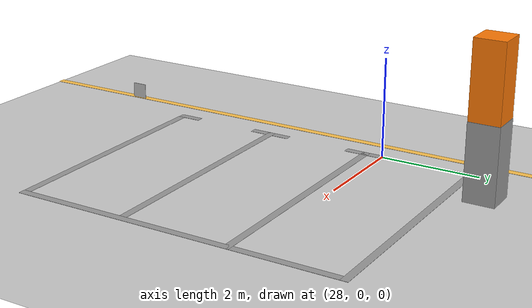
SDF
<sdf version="1.7">
 <world name="default">
  <model name="ground_plane">
   <static>1</static>
   <link name="link">
    <collision name="collision">
     <geometry><plane><normal>0 0 1</normal><size>100 100</size></plane></geometry>
     <surface><friction><ode><mu>100</mu><mu2>50</mu2></ode></friction></surface>
    </collision>
    <visual name="visual">
     <cast_shadows>0</cast_shadows>
     <geometry><plane><normal>0 0 1</normal><size>100 100</size></plane></geometry>
     <material>
      <script><uri>file://media/materials/scripts/gazebo.material</uri><name>Gazebo/Grey</name></script>
     </material>
    </visual>
   </link>
  </model>
  <model name="carport1_2_clone_1_clone_clone_clone">
   <pose>32.2274 -1.01442 0 0 0 -1.57043</pose>
   <link name="Wall_105">
    <collision name="Wall_105_Collision">
     <geometry><box><size>0.61 0.6 1.5</size></box></geometry>
     <pose>0 0 0.75 0 -0 0</pose>
    </collision>
    <visual name="Wall_105_Visual">
     <pose>0 0 0.75 0 -0 0</pose>
     <geometry><box><size>0.61 0.6 1.5</size></box></geometry>
     <material>
      <script><uri>file://media/materials/scripts/gazebo.material</uri><name>Gazebo/Grey</name></script>
      <ambient>1 1 1 1</ambient>
     </material>
     <meta><layer>0</layer></meta>
    </visual>
    <pose>-3.47407 -3.2865 0 0 -0 0</pose>
   </link>
   <link name="Wall_116">
    <collision name="Wall_116_Collision">
     <geometry><box><size>5.1 0.15 0.005</size></box></geometry>
     <pose>0 0 0.0025 0 -0 0</pose>
    </collision>
    <visual name="Wall_116_Visual">
     <pose>0 0 0.0025 0 -0 0</pose>
     <geometry><box><size>5.1 0.15 0.005</size></box></geometry>
     <material>
      <script><uri>file://media/materials/scripts/gazebo.material</uri><name>Gazebo/Grey</name></script>
      <ambient>1 1 1 1</ambient>
     </material>
     <meta><layer>0</layer></meta>
    </visual>
    <pose>-2.82307 -1.7385 0 0 -0 1.5708</pose>
   </link>
   <link name="Wall_124">
    <collision name="Wall_124_Collision">
     <geometry><box><size>5.1 0.15 0.005</size></box></geometry>
     <pose>0 0 0.0025 0 -0 0</pose>
    </collision>
    <visual name="Wall_124_Visual">
     <pose>0 0 0.0025 0 -0 0</pose>
     <geometry><box><size>5.1 0.15 0.005</size></box></geometry>
     <material>
      <script><uri>file://media/materials/scripts/gazebo.material</uri><name>Gazebo/Grey</name></script>
      <ambient>1 1 1 1</ambient>
     </material>
     <meta><layer>0</layer></meta>
    </visual>
    <pose>3.70393 -1.7305 0 0 -0 1.5708</pose>
   </link>
   <link name="Wall_146">
    <collision name="Wall_146_Collision">
     <geometry><box><size>6.67711 0.15 0.005</size></box></geometry>
     <pose>0 0 0.0025 0 -0 0</pose>
    </collision>
    <visual name="Wall_146_Visual">
     <pose>0 0 0.0025 0 -0 0</pose>
     <geometry><box><size>6.67711 0.15 0.005</size></box></geometry>
     <material>
      <script><uri>file://media/materials/scripts/gazebo.material</uri><name>Gazebo/Grey</name></script>
      <ambient>1 1 1 1</ambient>
     </material>
     <meta><layer>0</layer></meta>
    </visual>
    <pose>0.440428 0.7405 0 0 -0 0.001226</pose>
   </link>
   <link name="Wall_168">
    <collision name="Wall_168_Collision">
     <geometry><box><size>5.1 0.15 0.005</size></box></geometry>
     <pose>0 0 0.0025 0 -0 0</pose>
    </collision>
    <visual name="Wall_168_Visual">
     <pose>0 0 0.0025 0 -0 0</pose>
     <geometry><box><size>5.1 0.15 0.005</size></box></geometry>
     <material>
      <script><uri>file://media/materials/scripts/gazebo.material</uri><name>Gazebo/Grey</name></script>
      <ambient>1 1 1 1</ambient>
     </material>
     <meta><layer>0</layer></meta>
    </visual>
    <pose>-0.64827 -1.73839 0 0 -0 1.57088</pose>
   </link>
   <link name="Wall_173">
    <collision name="Wall_173_Collision">
     <geometry><box><size>5.1 0.15 0.005</size></box></geometry>
     <pose>0 0 0.0025 0 -0 0</pose>
    </collision>
    <visual name="Wall_173_Visual">
     <pose>0 0 0.0025 0 -0 0</pose>
     <geometry><box><size>5.1 0.15 0.005</size></box></geometry>
     <material>
      <script><uri>file://media/materials/scripts/gazebo.material</uri><name>Gazebo/Grey</name></script>
      <ambient>1 1 1 1</ambient>
     </material>
     <meta><layer>0</layer></meta>
    </visual>
    <pose>1.52673 -1.73839 0 0 -0 1.57088</pose>
   </link>
   <link name="Wall_177">
    <collision name="Wall_177_Collision">
     <geometry><box><size>0.6 0.59 3</size></box></geometry>
     <pose>0 0 1.5 0 -0 0</pose>
    </collision>
    <visual name="Wall_177_Visual">
     <pose>0 0 1.5 0 -0 0</pose>
     <geometry><box><size>0.6 0.59 3</size></box></geometry>
     <material>
      <script><uri>file://media/materials/scripts/gazebo.material</uri><name>Gazebo/Grey</name></script>
      <ambient>0.996078 0.47451 0.0196078 1</ambient>
     </material>
     <meta><layer>0</layer></meta>
    </visual>
    <pose>-3.47407 -3.2865 0 0 -0 0</pose>
   </link>
   <link name="Wall_179">
    <collision name="Wall_179_Collision">
     <geometry><box><size>0.5 0.15 0.005</size></box></geometry>
     <pose>0 0 0.0025 0 -0 0</pose>
    </collision>
    <visual name="Wall_179_Visual">
     <pose>0 0 0.0025 0 -0 0</pose>
     <geometry><box><size>0.5 0.15 0.005</size></box></geometry>
     <material>
      <script><uri>file://media/materials/scripts/gazebo.material</uri><name>Gazebo/Grey</name></script>
      <ambient>1 1 1 1</ambient>
     </material>
     <meta><layer>0</layer></meta>
    </visual>
    <pose>-2.64807 -4.2135 0 0 -0 0</pose>
   </link>
   <link name="Wall_181">
    <collision name="Wall_181_Collision">
     <geometry><box><size>0.5 0.15 0.005</size></box></geometry>
     <pose>0 0 0.0025 0 -0 0</pose>
    </collision>
    <visual name="Wall_181_Visual">
     <pose>0 0 0.0025 0 -0 0</pose>
     <geometry><box><size>0.5 0.15 0.005</size></box></geometry>
     <material>
      <script><uri>file://media/materials/scripts/gazebo.material</uri><name>Gazebo/Grey</name></script>
      <ambient>1 1 1 1</ambient>
     </material>
     <meta><layer>0</layer></meta>
    </visual>
    <pose>-0.823072 -4.2135 0 0 -0 3.14159</pose>
   </link>
   <link name="Wall_183">
    <collision name="Wall_183_Collision">
     <geometry><box><size>0.5 0.15 0.005</size></box></geometry>
     <pose>0 0 0.0025 0 -0 0</pose>
    </collision>
    <visual name="Wall_183_Visual">
     <pose>0 0 0.0025 0 -0 0</pose>
     <geometry><box><size>0.5 0.15 0.005</size></box></geometry>
     <material>
      <script><uri>file://media/materials/scripts/gazebo.material</uri><name>Gazebo/Grey</name></script>
      <ambient>1 1 1 1</ambient>
     </material>
     <meta><layer>0</layer></meta>
    </visual>
    <pose>-0.473072 -4.2135 0 0 -0 0</pose>
   </link>
   <link name="Wall_185">
    <collision name="Wall_185_Collision">
     <geometry><box><size>0.5 0.15 0.005</size></box></geometry>
     <pose>0 0 0.0025 0 -0 0</pose>
    </collision>
    <visual name="Wall_185_Visual">
     <pose>0 0 0.0025 0 -0 0</pose>
     <geometry><box><size>0.5 0.15 0.005</size></box></geometry>
     <material>
      <script><uri>file://media/materials/scripts/gazebo.material</uri><name>Gazebo/Grey</name></script>
      <ambient>1 1 1 1</ambient>
     </material>
     <meta><layer>0</layer></meta>
    </visual>
    <pose>1.35193 -4.2135 0 0 -0 3.14159</pose>
   </link>
   <link name="Wall_187">
    <collision name="Wall_187_Collision">
     <geometry><box><size>0.5 0.15 0.005</size></box></geometry>
     <pose>0 0 0.0025 0 -0 0</pose>
    </collision>
    <visual name="Wall_187_Visual">
     <pose>0 0 0.0025 0 -0 0</pose>
     <geometry><box><size>0.5 0.15 0.005</size></box></geometry>
     <material>
      <script><uri>file://media/materials/scripts/gazebo.material</uri><name>Gazebo/Grey</name></script>
      <ambient>1 1 1 1</ambient>
     </material>
     <meta><layer>0</layer></meta>
    </visual>
    <pose>1.70193 -4.2135 0 0 -0 0</pose>
   </link>
   <link name="Wall_189">
    <collision name="Wall_189_Collision">
     <geometry><box><size>0.5 0.15 0.005</size></box></geometry>
     <pose>0 0 0.0025 0 -0 0</pose>
    </collision>
    <visual name="Wall_189_Visual">
     <pose>0 0 0.0025 0 -0 0</pose>
     <geometry><box><size>0.5 0.15 0.005</size></box></geometry>
     <material>
      <script><uri>file://media/materials/scripts/gazebo.material</uri><name>Gazebo/Grey</name></script>
      <ambient>1 1 1 1</ambient>
     </material>
     <meta><layer>0</layer></meta>
    </visual>
    <pose>3.52893 -4.2055 0 0 -0 3.14159</pose>
   </link>
   <static>1</static>
  </model>
  <model name="line_yellow_30m_clone_clone_1_clone">
   <pose>28.5301 -5.51091 0 0 -0 0</pose>
   <link name="Wall_0">
    <collision name="Wall_0_Collision">
     <geometry><box><size>30 0.15 0.005</size></box></geometry>
     <pose>0 0 0.0025 0 -0 0</pose>
    </collision>
    <visual name="Wall_0_Visual">
     <pose>0 0 0.0025 0 -0 0</pose>
     <geometry><box><size>30 0.15 0.005</size></box></geometry>
     <material>
      <script><uri>file://media/materials/scripts/gazebo.material</uri><name>Gazebo/Grey</name></script>
      <ambient>1 0.764706 0.305882 1</ambient>
     </material>
     <meta><layer>0</layer></meta>
    </visual>
    <pose>-1.0925 -0.9575 0 0 -0 -1.5708</pose>
   </link>
   <static>1</static>
  </model>
  <model name="Apriltag36_11_00003_clone_clone">
   <link name="main">
    <visual name="main_Visual">
     <geometry><box><size>0.3 0.3 0.01</size></box></geometry>
     <material>
      <script>
       <uri>model://Apriltag36_11_00003/materials/scripts</uri>
       <uri>model://Apriltag36_11_00003/materials/textures</uri>
       <name>Apriltag36_11_00003</name>
      </script>
     </material>
    </visual>
   </link>
   <static>1</static>
   <pose>28.6362 -5.40738 0.631725 3.14159 -1.56995 3.14159</pose>
  </model>
 </world>
</sdf>
